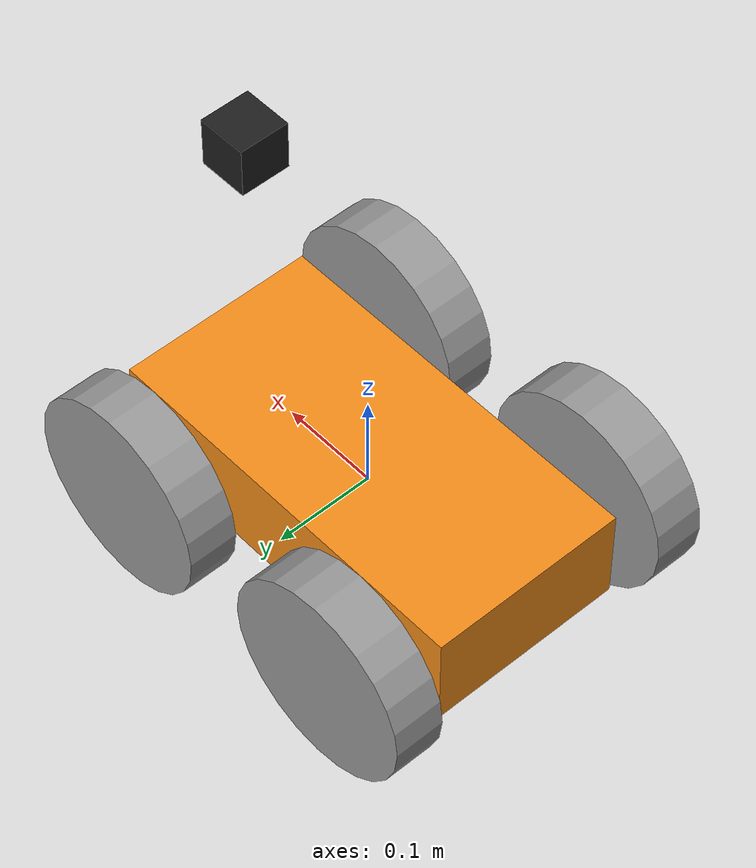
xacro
<?xml version='1.0'?>
<robot name="slambot" xmlns:xacro="http://www.ros.org/wiki/xacro">

  <!-- LINK: base_footprint -->
  <link name="base_footprint"></link>

  <!-- LINK: chassis -->
  <link name='chassis'>
    <pose>0 0 0 0 0 0</pose>

    <inertial>
      <mass value="15.0"/>
      <origin xyz="0 0 0" rpy=" 0 0 0"/>
      <inertia ixx="0.1" ixy="0" ixz="0" iyy="0.1" iyz="0" izz="0.1" />
    </inertial>

    <collision name='chassis_collision'>
      <origin xyz="0 0 0" rpy=" 0 0 0"/>
      <geometry>
        <box size=".4 .2 .1"/>
      </geometry>
    </collision>

    <visual name='chassis_visual'>
      <origin xyz="0 0 0" rpy=" 0 0 0"/>
      <geometry>
        <box size=".4 .2 .1"/>
      </geometry>
    </visual>
  </link>

  <!-- LINK: front_left_wheel -->
  <link name="front_left_wheel">
    <inertial>
      <mass value="8.0"/>
      <origin xyz="0 0 0" rpy=" 0 1.5707 1.5707"/>
      <inertia ixx="0.1" ixy="0" ixz="0" iyy="0.1" iyz="0" izz="0.1" />
    </inertial>

    <collision>
      <origin xyz="0 0 0" rpy=" 0 1.5707 1.5707"/>
      <geometry>
        <cylinder length="0.05" radius="0.1"/>
      </geometry>
    </collision>

    <visual>
      <origin xyz="0 0 0" rpy=" 0 1.5707 1.5707"/>
      <geometry>
        <cylinder length="0.05" radius="0.1"/>
      </geometry>
    </visual>
  </link>

  <!-- LINK: back_left_wheel -->
  <link name="back_left_wheel">
    <inertial>
      <mass value="8.0"/>
      <origin xyz="0 0 0" rpy=" 0 1.5707 1.5707"/>
      <inertia ixx="0.1" ixy="0" ixz="0" iyy="0.1" iyz="0" izz="0.1" />
    </inertial>

    <collision>
      <origin xyz="0 0 0" rpy=" 0 1.5707 1.5707"/>
      <geometry>
        <cylinder length="0.05" radius="0.1"/>
      </geometry>
    </collision>

    <visual>
      <origin xyz="0 0 0" rpy=" 0 1.5707 1.5707"/>
      <geometry>
        <cylinder length="0.05" radius="0.1"/>
      </geometry>
    </visual>
  </link>

  <!-- LINK: front_right_wheel -->
  <link name="front_right_wheel">
    <inertial>
      <mass value="8.0"/>
      <origin xyz="0 0 0" rpy=" 0 1.5707 1.5707"/>
      <inertia ixx="0.1" ixy="0" ixz="0" iyy="0.1" iyz="0" izz="0.1" />
    </inertial>

    <collision>
      <origin xyz="0 0 0" rpy=" 0 1.5707 1.5707"/>
      <geometry>
        <cylinder length="0.05" radius="0.1"/>
      </geometry>
    </collision>

    <visual>
      <origin xyz="0 0 0" rpy=" 0 1.5707 1.5707"/>
      <geometry>
        <cylinder length="0.05" radius="0.1"/>
      </geometry>
    </visual>
  </link>

  <!-- LINK: back_right_wheel -->
  <link name="back_right_wheel">
    <inertial>
      <mass value="8.0"/>
      <origin xyz="0 0 0" rpy=" 0 1.5707 1.5707"/>
      <inertia ixx="0.1" ixy="0" ixz="0" iyy="0.1" iyz="0" izz="0.1" />
    </inertial>

    <collision>
      <origin xyz="0 0 0" rpy=" 0 1.5707 1.5707"/>
      <geometry>
        <cylinder length="0.05" radius="0.1"/>
      </geometry>
    </collision>

    <visual>
      <origin xyz="0 0 0" rpy=" 0 1.5707 1.5707"/>
      <geometry>
        <cylinder length="0.05" radius="0.1"/>
      </geometry>
    </visual>
  </link>

  <!-- LINK: hokuyo -->
  <link name="hokuyo">
    <inertial>
      <mass value="1e-5"/>
      <origin xyz="0 0 0" rpy=" 0 0 0"/>
      <inertia ixx="1e-6" ixy="0" ixz="0" iyy="1e-6" iyz="0" izz="1e-6" />
    </inertial>

    <visual name="hokuyo_visual">
      <origin xyz="0 0 0" rpy="0 0 0" />
      <geometry>
        <box size="0.05 0.05 0.05"/>
      </geometry>
    </visual>

    <collision name="hokuyo_colision">
      <origin xyz="0 0 0" rpy="0 0 0" />
      <geometry>
        <box size="0.1 0.1 0.1"/>
      </geometry>
    </collision>
  </link>

  <!-- JOINT: chassis -->
  <joint name="chassis_joint" type="fixed">
    <origin xyz="0 0 0" rpy="0 0 0" />
    <parent link="base_footprint"/>
    <child link="chassis" />
  </joint>

  <!-- JOINT: wheel -->
  <joint type="continuous" name="front_left_wheel_joint">
    <origin xyz="0.13 0.15 0" rpy="0 0 0"/>
    <child link="front_left_wheel"/>
    <parent link="base_footprint"/>
    <axis xyz="0 1 0" rpy="0 0 0"/>
    <limit effort="10000" velocity="1000"/>
    <dynamics damping="1.0" friction="1.0"/>
  </joint>

  <!-- JOINT: wheel -->
  <joint type="continuous" name="front_right_wheel_joint">
    <origin xyz="0.13 -0.15 0" rpy="0 0 0"/>
    <child link="front_right_wheel"/>
    <parent link="base_footprint"/>
    <axis xyz="0 1 0" rpy="0 0 0"/>
    <limit effort="10000" velocity="1000"/>
    <dynamics damping="1.0" friction="1.0"/>
  </joint>

  <!-- JOINT: wheel -->
  <joint type="continuous" name="back_left_wheel_joint">
    <origin xyz="-0.13 0.15 0" rpy="0 0 0"/>
    <child link="back_left_wheel"/>
    <parent link="base_footprint"/>
    <axis xyz="0 1 0" rpy="0 0 0"/>
    <limit effort="10000" velocity="1000"/>
    <dynamics damping="1.0" friction="1.0"/>
  </joint>

  <!-- JOINT: wheel -->
  <joint type="continuous" name="back_right_wheel_joint">
    <origin xyz="-0.13 -0.15 0" rpy="0 0 0"/>
    <child link="back_right_wheel"/>
    <parent link="base_footprint"/>
    <axis xyz="0 1 0" rpy="0 0 0"/>
    <limit effort="10000" velocity="1000"/>
    <dynamics damping="1.0" friction="1.0"/>
  </joint>

  <!-- JOINT: hokuyo -->
  <joint type="fixed" name="hokuyo_joint">
    <origin xyz="0.15 0 0.3" rpy="0 0 0"/>
    <child link="hokuyo"/>
    <parent link="base_footprint"/>
    <axis xyz="0 1 0" rpy="0 0 0"/>
  </joint>

  <!-- COLOR: chassis -->
  <gazebo reference="chassis">
    <material>Gazebo/Orange</material>
  </gazebo>

  <!-- COLOR: wheel -->
  <gazebo reference="front_left_wheel">
    <material>Gazebo/Grey</material>
  </gazebo>

  <!-- COLOR: wheel -->
  <gazebo reference="back_left_wheel">
    <material>Gazebo/Grey</material>
  </gazebo>

  <!-- COLOR: wheel -->
  <gazebo reference="front_right_wheel">
    <material>Gazebo/Grey</material>
  </gazebo>

  <!-- COLOR: wheel -->
  <gazebo reference="back_right_wheel">
    <material>Gazebo/Grey</material>
  </gazebo>

  <!-- COLOR: hokuyo -->
  <gazebo reference="hokuyo">
    <material>Gazebo/Black</material>
  </gazebo>

  <!-- PLUGIN: drive -->
  <gazebo>
    <plugin name="diff_drive_controller" filename="libgazebo_ros_diff_drive.so">
      <ros>
        <namespace>/slambot</namespace>
        <argument>/cmd_vel:=cmd_vel</argument>
        <argument>/odom:=odom</argument>
      </ros>
      <update_rate>100.0</update_rate>
      <num_wheel_pairs>2</num_wheel_pairs>
      <odometry_frame>odom</odometry_frame>

      <left_joint>front_left_wheel_joint</left_joint>
      <left_joint>back_left_wheel_joint</left_joint>
      <wheel_separation>0.4</wheel_separation>
      <wheel_diameter>0.2</wheel_diameter>

      <right_joint>front_right_wheel_joint</right_joint>
      <right_joint>back_right_wheel_joint</right_joint>
      <wheel_separation>0.4</wheel_separation>
      <wheel_diameter>0.2</wheel_diameter>

      <robot_base_frame>base_footprint</robot_base_frame>
      <max_wheel_torque>15</max_wheel_torque>

      <publish_odom>true</publish_odom>
      <publish_odom_tf>true</publish_odom_tf>
      <publish_wheel_tf>false</publish_wheel_tf>
    </plugin>
  </gazebo>

  <!-- PLUGIN: sensor -->
  <gazebo reference="hokuyo">
    <sensor type="ray" name="head_hokuyo_sensor">
      <pose>0 0 0 0 0 0</pose>
      <visualize>false</visualize>
      <update_rate>40</update_rate>
      <ray>
        <scan>
          <horizontal>
            <samples>720</samples>
            <resolution>1</resolution>
            <min_angle>-3.141592</min_angle>
            <max_angle>3.141592</max_angle>
          </horizontal>
        </scan>
        <range>
          <min>0.10</min>
          <max>30.0</max>
          <resolution>0.01</resolution>
        </range>
        <noise>
          <type>gaussian</type>
          <mean>0.0</mean>
          <stddev>0.01</stddev>
        </noise>
      </ray>
      <update_rate>30</update_rate>
      <plugin name="laser_controller" filename="libgazebo_ros_ray_sensor.so">
        <ros>
          <argument>~/out:=scan</argument>
        </ros>
        <output_type>sensor_msgs/LaserScan</output_type>
        <namespace>/slambot</namespace>
      </plugin>
    </sensor>
  </gazebo>

</robot>
